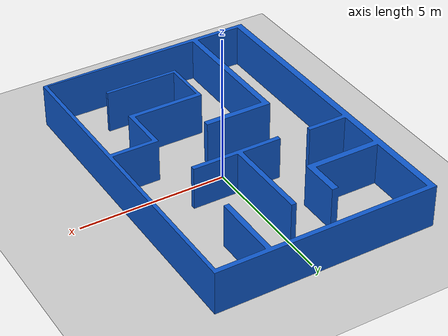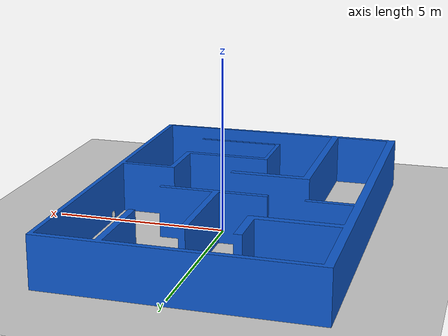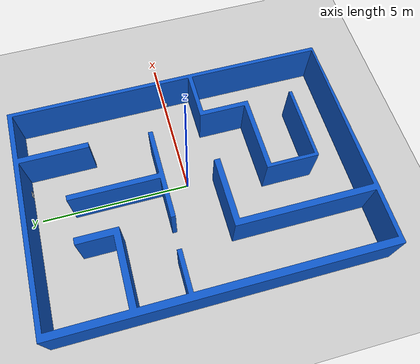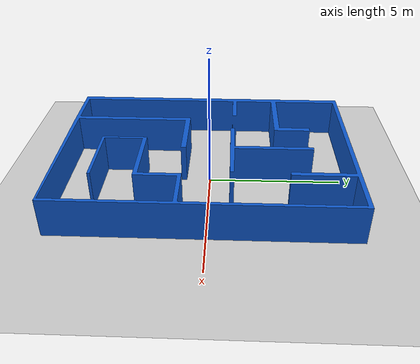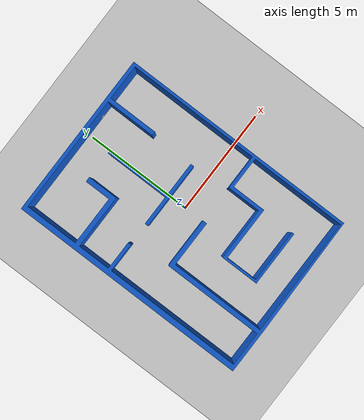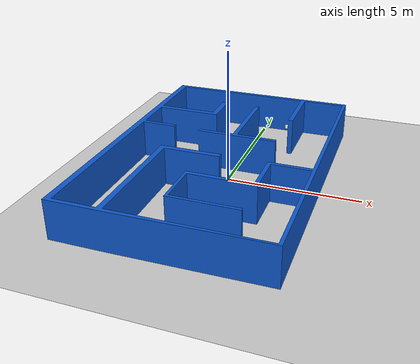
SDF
<sdf version='1.9'>
  <world name='empty'>
    <physics name='1ms' type='ignored'>
      <max_step_size>0.001</max_step_size>
      <real_time_factor>1</real_time_factor>
      <real_time_update_rate>1000</real_time_update_rate>
    </physics>
    <plugin name='gz::sim::systems::Physics' filename='ignition-gazebo-physics-system'/>
    <plugin name='gz::sim::systems::UserCommands' filename='ignition-gazebo-user-commands-system'/>
    <plugin name='gz::sim::systems::SceneBroadcaster' filename='ignition-gazebo-scene-broadcaster-system'/>
    <plugin name='gz::sim::systems::Contact' filename='ignition-gazebo-contact-system'/>
    <gravity>0 0 -9.8</gravity>
    <magnetic_field>6e-06 2.3e-05 -4.2e-05</magnetic_field>
    <atmosphere type='adiabatic'/>
    <scene>
      <ambient>0.4 0.4 0.4 1</ambient>
      <background>0.7 0.7 0.7 1</background>
      <shadows>true</shadows>
    </scene>
    <model name='ground_plane'>
      <static>true</static>
      <link name='link'>
        <collision name='collision'>
          <geometry>
            <plane>
              <normal>0 0 1</normal>
              <size>100 100</size>
            </plane>
          </geometry>
          <surface>
            <friction>
              <ode/>
            </friction>
            <bounce/>
            <contact/>
          </surface>
        </collision>
        <visual name='visual'>
          <geometry>
            <plane>
              <normal>0 0 1</normal>
              <size>100 100</size>
            </plane>
          </geometry>
          <material>
            <ambient>0.8 0.8 0.8 1</ambient>
            <diffuse>0.8 0.8 0.8 1</diffuse>
            <specular>0.8 0.8 0.8 1</specular>
          </material>
        </visual>
        <pose>0 0 0 0 -0 0</pose>
        <inertial>
          <pose>0 0 0 0 -0 0</pose>
          <mass>1</mass>
          <inertia>
            <ixx>1</ixx>
            <ixy>0</ixy>
            <ixz>0</ixz>
            <iyy>1</iyy>
            <iyz>0</iyz>
            <izz>1</izz>
          </inertia>
        </inertial>
        <enable_wind>false</enable_wind>
      </link>
      <pose>0 0 0 0 -0 0</pose>
      <self_collide>false</self_collide>
    </model>
    <model name='maze'>
      <link name='link'>
        <visual name='visual'>
          <geometry>
            <mesh>
              <uri>file:///home/tom/SensQ/ros2_ws/install/my_robot_description/share/my_robot_description/worlds/maze.dae</uri>
            </mesh>
          </geometry>
        </visual>
        <collision name='collision'>
          <geometry>
            <mesh>
              <uri>file:///home/tom/SensQ/ros2_ws/install/my_robot_description/share/my_robot_description/worlds/maze.dae</uri>
            </mesh>
          </geometry>
        </collision>
        <pose>0 0 0 0 -0 0</pose>
        <inertial>
          <pose>0 0 0 0 -0 0</pose>
          <mass>1</mass>
          <inertia>
            <ixx>1</ixx>
            <ixy>0</ixy>
            <ixz>0</ixz>
            <iyy>1</iyy>
            <iyz>0</iyz>
            <izz>1</izz>
          </inertia>
        </inertial>
        <enable_wind>false</enable_wind>
      </link>
      <pose>-2.74082 -2.10299 -0.00074 0 -0 0</pose>
      <static>true</static>
      <self_collide>false</self_collide>
    </model>
    <include>
      <uri>file:///home/tom/SensQ/ros2_ws/install/my_robot_description/share/my_robot_description/models/apriltag_36h11_0</uri>
      <name>apriltag_36h11_0</name>
      <pose>3.34689 0.003265 0.065496 0 -0 0</pose>
    </include>
    <include>
      <uri>file:///home/tom/SensQ/ros2_ws/install/my_robot_description/share/my_robot_description/models/apriltag_36h11_1</uri>
      <name>apriltag_36h11_1</name>
      <pose>1 5.18213 0.069305 0 -0 1.5708</pose>
    </include>
    <light name='sun' type='directional'>
      <pose>0 0 10 0 -0 0</pose>
      <cast_shadows>true</cast_shadows>
      <intensity>1</intensity>
      <direction>-0.5 0.1 -0.9</direction>
      <diffuse>0.8 0.8 0.8 1</diffuse>
      <specular>0.2 0.2 0.2 1</specular>
      <attenuation>
        <range>1000</range>
        <linear>0.01</linear>
        <constant>0.90000000000000002</constant>
        <quadratic>0.001</quadratic>
      </attenuation>
      <spot>
        <inner_angle>0</inner_angle>
        <outer_angle>0</outer_angle>
        <falloff>0</falloff>
      </spot>
    </light>
  </world>
</sdf>

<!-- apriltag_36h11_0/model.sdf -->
<sdf version="1.9">
  <model name="apriltag_36h11_0">
    <static>true</static>

    <link name="tag_link">
      <!-- A thin upright backing gives the marker visible front and back faces. -->
      <visual name="tag_visual">
        <pose>0 0 0.10 0 0 0</pose>
        <cast_shadows>false</cast_shadows>
        <geometry>
          <box>
            <size>0.005 0.20 0.20</size>
          </box>
        </geometry>
        <material>
          <lighting>true</lighting>
          <ambient>1 1 1 1</ambient>
          <diffuse>1 1 1 1</diffuse>
          <specular>0 0 0 1</specular>
          <pbr>
            <metal>
              <albedo_map>materials/textures/tag36_11_00000_rgb.png</albedo_map>
              <metalness>0</metalness>
              <roughness>1</roughness>
            </metal>
          </pbr>
        </material>
      </visual>

      <collision name="tag_collision">
        <pose>0 0 0.10 0 0 0</pose>
        <geometry>
          <box>
            <size>0.005 0.20 0.20</size>
          </box>
        </geometry>
      </collision>
    </link>
  </model>
</sdf>

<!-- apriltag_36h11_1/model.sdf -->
<sdf version="1.9">
  <model name="apriltag_36h11_1">
    <static>true</static>

    <link name="tag_link">
      <!-- A thin upright backing gives the marker visible front and back faces. -->
      <visual name="tag_visual">
        <pose>0 0 0.10 0 0 0</pose>
        <cast_shadows>false</cast_shadows>
        <geometry>
          <box>
            <size>0.005 0.20 0.20</size>
          </box>
        </geometry>
        <material>
          <lighting>true</lighting>
          <ambient>1 1 1 1</ambient>
          <diffuse>1 1 1 1</diffuse>
          <specular>0 0 0 1</specular>
          <pbr>
            <metal>
              <albedo_map>materials/textures/tag36_11_00001_rgb.png</albedo_map>
              <metalness>0</metalness>
              <roughness>1</roughness>
            </metal>
          </pbr>
        </material>
      </visual>

      <collision name="tag_collision">
        <pose>0 0 0.10 0 0 0</pose>
        <geometry>
          <box>
            <size>0.005 0.20 0.20</size>
          </box>
        </geometry>
      </collision>
    </link>
  </model>
</sdf>
